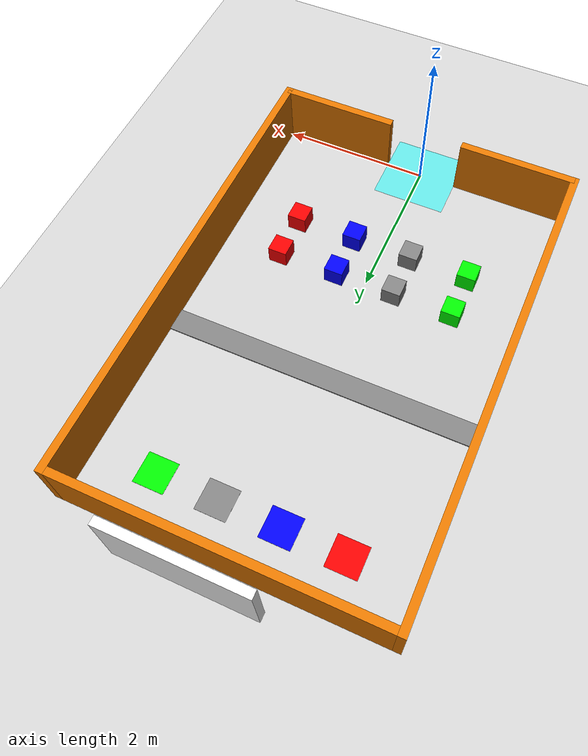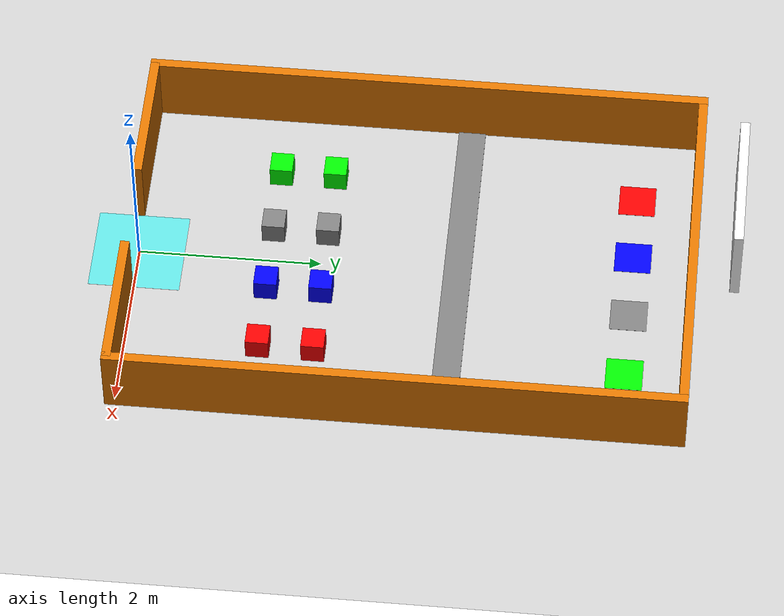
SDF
<?xml version="1.0" ?>
<sdf version="1.7">
  <world name="robocon_task_arena">
    <light type="directional" name="sun">
      <cast_shadows>true</cast_shadows>
      <pose>0 0 10 0 0 0</pose>
      <diffuse>0.8 0.8 0.8 1</diffuse>
      <specular>0.2 0.2 0.2 1</specular>
      <direction>-0.5 0.1 -0.9</direction>
    </light>

    <!-- 地面 -->
    <model name="ground_plane">
      <static>true</static>
      <link name="link">
        <collision name="collision">
          <geometry>
            <plane>
              <normal>0 0 1</normal>
              <size>100 100</size>
            </plane>
          </geometry>
        </collision>
        <visual name="visual">
          <geometry>
            <plane>
              <normal>0 0 1</normal>
              <size>100 100</size>
            </plane>
          </geometry>
          <material>
            <ambient>0.8 0.8 0.8 1</ambient>
            <diffuse>0.8 0.8 0.8 1</diffuse>
          </material>
        </visual>
      </link>
    </model>

    <!-- 围墙 - 整体上移3米，让启动区在原点 -->
    <model name="arena_walls">
      <static>true</static>
      <pose>0 0 0.4 0 0 0</pose>

      <!-- 后墙 (原 y=3.05 -> 现 y=6.05) -->
      <link name="wall_back">
        <pose>0 6.05 0 0 0 0</pose>
        <visual name="visual">
          <geometry><box><size>4.0 0.1 0.8</size></box></geometry>
          <material>
            <ambient>0.8745 0.4588 0 1</ambient>
            <diffuse>0.8745 0.4588 0 1</diffuse>
          </material>
        </visual>
        <collision name="collision">
          <geometry><box><size>4.0 0.1 0.8</size></box></geometry>
        </collision>
      </link>

      <!-- 前墙左段 (原 y=-3.05 -> 现 y=-0.05) -->
      <link name="wall_front_left">
        <pose>-1.275 -0.05 0 0 0 0</pose>
        <visual name="visual">
          <geometry><box><size>1.55 0.1 0.8</size></box></geometry>
          <material>
            <ambient>0.8745 0.4588 0 1</ambient>
            <diffuse>0.8745 0.4588 0 1</diffuse>
          </material>
        </visual>
        <collision name="collision">
          <geometry><box><size>1.55 0.1 0.8</size></box></geometry>
        </collision>
      </link>

      <!-- 前墙右段 (原 y=-3.05 -> 现 y=-0.05) -->
      <link name="wall_front_right">
        <pose>1.275 -0.05 0 0 0 0</pose>
        <visual name="visual">
          <geometry><box><size>1.55 0.1 0.8</size></box></geometry>
          <material>
            <ambient>0.8745 0.4588 0 1</ambient>
            <diffuse>0.8745 0.4588 0 1</diffuse>
          </material>
        </visual>
        <collision name="collision">
          <geometry><box><size>1.55 0.1 0.8</size></box></geometry>
        </collision>
      </link>

      <!-- 左墙 (原中心 y=0 -> 现中心 y=3.0，长度6.2米覆盖 -0.1 到 6.1) -->
      <link name="wall_left">
        <pose>-2.05 3.0 0 0 0 0</pose>
        <visual name="visual">
          <geometry><box><size>0.1 6.2 0.8</size></box></geometry>
          <material>
            <ambient>0.8745 0.4588 0 1</ambient>
            <diffuse>0.8745 0.4588 0 1</diffuse>
          </material>
        </visual>
        <collision name="collision">
          <geometry><box><size>0.1 6.2 0.8</size></box></geometry>
        </collision>
      </link>

      <!-- 右墙 (原中心 y=0 -> 现中心 y=3.0，长度6.2米覆盖 -0.1 到 6.1) -->
      <link name="wall_right">
        <pose>2.05 3.0 0 0 0 0</pose>
        <visual name="visual">
          <geometry><box><size>0.1 6.2 0.8</size></box></geometry>
          <material>
            <ambient>0.8745 0.4588 0 1</ambient>
            <diffuse>0.8745 0.4588 0 1</diffuse>
          </material>
        </visual>
        <collision name="collision">
          <geometry><box><size>0.1 6.2 0.8</size></box></geometry>
        </collision>
      </link>
    </model>

    <!-- 减速带 (原 y=0.5 -> 现 y=3.5) -->
    <model name="speed_bump">
      <static>true</static>
      <pose>0 3.5 0.01 0 0 0</pose>
      <link name="link">
        <visual name="visual">
          <geometry><box><size>4.0 0.3 0.02</size></box></geometry>
          <material>
            <ambient>0.5 0.5 0.5 1</ambient>
            <diffuse>0.5 0.5 0.5 1</diffuse>
          </material>
        </visual>
        <collision name="collision">
          <geometry><box><size>4.0 0.3 0.02</size></box></geometry>
        </collision>
      </link>
    </model>

    <!-- 归位区 (原 y=2.4 -> 现 y=5.4) -->
    <model name="return_zone_green_food">
      <static>true</static>
      <pose>1.2 5.4 0.001 0 0 0</pose>
      <link name="link">
        <visual name="visual">
          <geometry><box><size>0.4 0.4 0.002</size></box></geometry>
          <material>
            <ambient>0.0 1.0 0.0 1</ambient>
            <diffuse>0.0 1.0 0.0 1</diffuse>
          </material>
        </visual>
        <collision name="collision">
          <geometry><box><size>0.4 0.4 0.002</size></box></geometry>
        </collision>
      </link>
    </model>

    <model name="return_zone_gray_tools">
      <static>true</static>
      <pose>0.4 5.4 0.001 0 0 0</pose>
      <link name="link">
        <visual name="visual">
          <geometry><box><size>0.4 0.4 0.002</size></box></geometry>
          <material>
            <ambient>0.5 0.5 0.5 1</ambient>
            <diffuse>0.5 0.5 0.5 1</diffuse>
          </material>
        </visual>
        <collision name="collision">
          <geometry><box><size>0.4 0.4 0.002</size></box></geometry>
        </collision>
      </link>
    </model>

    <model name="return_zone_blue_instrument">
      <static>true</static>
      <pose>-0.4 5.4 0.00001 0 0 0</pose>
      <link name="link">
        <visual name="visual">
          <geometry><box><size>0.4 0.4 0.002</size></box></geometry>
          <material>
            <ambient>0.0 0.0 1.0 1</ambient>
            <diffuse>0.0 0.0 1.0 1</diffuse>
          </material>
        </visual>
        <collision name="collision">
          <geometry><box><size>0.4 0.4 0.002</size></box></geometry>
        </collision>
      </link>
    </model>

    <model name="return_zone_red_medicine">
      <static>true</static>
      <pose>-1.2 5.4 0.001 0 0 0</pose>
      <link name="link">
        <visual name="visual">
          <geometry><box><size>0.4 0.4 0.002</size></box></geometry>
          <material>
            <ambient>1.0 0.0 0.0 1</ambient>
            <diffuse>1.0 0.0 0.0 1</diffuse>
          </material>
        </visual>
        <collision name="collision">
          <geometry><box><size>0.4 0.4 0.002</size></box></geometry>
        </collision>
      </link>
    </model>

    <!-- 启动区 - 现在在原点 (原 y=-3.0 -> 现 y=0) -->
    <model name="start_zone">
      <static>true</static>
      <pose>0 0 0.001 0 0 0</pose>
      <link name="link">
        <visual name="visual">
          <geometry><box><size>1.0 1.0 0.002</size></box></geometry>
          <material>
            <ambient>0.0 1.0 1.0 0.5</ambient>
            <diffuse>0.0 1.0 1.0 0.5</diffuse>
          </material>
        </visual>
        <collision name="collision">
          <geometry><box><size>1.0 1.0 0.002</size></box></geometry>
        </collision>
      </link>
    </model>

    <!-- 物资箱存放区标记 -->
    <model name="supply_zones_markers">
      <static>true</static>
      <!-- 第一排 (原 y=-0.95 -> 现 y=2.05) -->
      <link name="supply_1_1">
        <pose>-1.2 2.05 0.0005 0 0 0</pose>
        <visual name="visual">
          <geometry><box><size>0.25 0.25 0.001</size></box></geometry>
          <material>
            <ambient>0.8 0.8 0.8 1</ambient>
            <diffuse>0.8 0.8 0.8 1</diffuse>
          </material>
        </visual>
      </link>
      <link name="supply_1_2">
        <pose>-0.4 2.05 0.0005 0 0 0</pose>
        <visual name="visual">
          <geometry><box><size>0.25 0.25 0.001</size></box></geometry>
          <material>
            <ambient>0.8 0.8 0.8 1</ambient>
            <diffuse>0.8 0.8 0.8 1</diffuse>
          </material>
        </visual>
      </link>
      <link name="supply_1_3">
        <pose>0.4 2.05 0.0005 0 0 0</pose>
        <visual name="visual">
          <geometry><box><size>0.25 0.25 0.001</size></box></geometry>
          <material>
            <ambient>0.8 0.8 0.8 1</ambient>
            <diffuse>0.8 0.8 0.8 1</diffuse>
          </material>
        </visual>
      </link>
      <link name="supply_1_4">
        <pose>1.2 2.05 0.0005 0 0 0</pose>
        <visual name="visual">
          <geometry><box><size>0.25 0.25 0.001</size></box></geometry>
          <material>
            <ambient>0.8 0.8 0.8 1</ambient>
            <diffuse>0.8 0.8 0.8 1</diffuse>
          </material>
        </visual>
      </link>
      <!-- 第二排 (原 y=-1.55 -> 现 y=1.45) -->
      <link name="supply_2_1">
        <pose>-1.2 1.45 0.0005 0 0 0</pose>
        <visual name="visual">
          <geometry><box><size>0.25 0.25 0.001</size></box></geometry>
          <material>
            <ambient>0.8 0.8 0.8 1</ambient>
            <diffuse>0.8 0.8 0.8 1</diffuse>
          </material>
        </visual>
      </link>
      <link name="supply_2_2">
        <pose>-0.4 1.45 0.0005 0 0 0</pose>
        <visual name="visual">
          <geometry><box><size>0.25 0.25 0.001</size></box></geometry>
          <material>
            <ambient>0.8 0.8 0.8 1</ambient>
            <diffuse>0.8 0.8 0.8 1</diffuse>
          </material>
        </visual>
      </link>
      <link name="supply_2_3">
        <pose>0.4 1.45 0.0005 0 0 0</pose>
        <visual name="visual">
          <geometry><box><size>0.25 0.25 0.001</size></box></geometry>
          <material>
            <ambient>0.8 0.8 0.8 1</ambient>
            <diffuse>0.8 0.8 0.8 1</diffuse>
          </material>
        </visual>
      </link>
      <link name="supply_2_4">
        <pose>1.2 1.45 0.0005 0 0 0</pose>
        <visual name="visual">
          <geometry><box><size>0.25 0.25 0.001</size></box></geometry>
          <material>
            <ambient>0.8 0.8 0.8 1</ambient>
            <diffuse>0.8 0.8 0.8 1</diffuse>
          </material>
        </visual>
      </link>
    </model>

    <!-- 物资箱 -->
    <!-- 第一排 (原 y=-0.95 -> 现 y=2.05) -->
    <model name="food_box_1">
      <static>false</static>
      <pose>-1.2 2.05 0.125 0 0 0</pose>
      <link name="link">
        <inertial>
          <mass>0.5</mass>
          <inertia>
            <ixx>0.0052</ixx> <iyy>0.0052</iyy> <izz>0.0052</izz>
            <ixy>0</ixy> <ixz>0</ixz> <iyz>0</iyz>
          </inertia>
        </inertial>
        <collision name="collision">
          <geometry><box><size>0.25 0.25 0.25</size></box></geometry>
        </collision>
        <visual name="visual">
          <geometry><box><size>0.25 0.25 0.25</size></box></geometry>
          <material>
            <ambient>0.0 1.0 0.0 1</ambient>
            <diffuse>0.0 1.0 0.0 1</diffuse>
          </material>
        </visual>
      </link>
    </model>

    <model name="tool_box_1">
      <static>false</static>
      <pose>-0.4 2.05 0.125 0 0 0</pose>
      <link name="link">
        <inertial>
          <mass>0.5</mass>
          <inertia>
            <ixx>0.0052</ixx> <iyy>0.0052</iyy> <izz>0.0052</izz>
            <ixy>0</ixy> <ixz>0</ixz> <iyz>0</iyz>
          </inertia>
        </inertial>
        <collision name="collision">
          <geometry><box><size>0.25 0.25 0.25</size></box></geometry>
        </collision>
        <visual name="visual">
          <geometry><box><size>0.25 0.25 0.25</size></box></geometry>
          <material>
            <ambient>0.5 0.5 0.5 1</ambient>
            <diffuse>0.5 0.5 0.5 1</diffuse>
          </material>
        </visual>
      </link>
    </model>

    <model name="instrument_box_1">
      <static>false</static>
      <pose>0.4 2.05 0.125 0 0 0</pose>
      <link name="link">
        <inertial>
          <mass>0.5</mass>
          <inertia>
            <ixx>0.0052</ixx> <iyy>0.0052</iyy> <izz>0.0052</izz>
            <ixy>0</ixy> <ixz>0</ixz> <iyz>0</iyz>
          </inertia>
        </inertial>
        <collision name="collision">
          <geometry><box><size>0.25 0.25 0.25</size></box></geometry>
        </collision>
        <visual name="visual">
          <geometry><box><size>0.25 0.25 0.25</size></box></geometry>
          <material>
            <ambient>0.0 0.0 1.0 1</ambient>
            <diffuse>0.0 0.0 1.0 1</diffuse>
          </material>
        </visual>
      </link>
    </model>

    <model name="medicine_box_1">
      <static>false</static>
      <pose>1.2 2.05 0.125 0 0 0</pose>
      <link name="link">
        <inertial>
          <mass>0.5</mass>
          <inertia>
            <ixx>0.0052</ixx> <iyy>0.0052</iyy> <izz>0.0052</izz>
            <ixy>0</ixy> <ixz>0</ixz> <iyz>0</iyz>
          </inertia>
        </inertial>
        <collision name="collision">
          <geometry><box><size>0.25 0.25 0.25</size></box></geometry>
        </collision>
        <visual name="visual">
          <geometry><box><size>0.25 0.25 0.25</size></box></geometry>
          <material>
            <ambient>1.0 0.0 0.0 1</ambient>
            <diffuse>1.0 0.0 0.0 1</diffuse>
          </material>
        </visual>
      </link>
    </model>

    <!-- 第二排 (原 y=-1.55 -> 现 y=1.45) -->
    <model name="food_box_2">
      <static>false</static>
      <pose>-1.2 1.45 0.125 0 0 0</pose>
      <link name="link">
        <inertial>
          <mass>0.5</mass>
          <inertia>
            <ixx>0.0052</ixx> <iyy>0.0052</iyy> <izz>0.0052</izz>
            <ixy>0</ixy> <ixz>0</ixz> <iyz>0</iyz>
          </inertia>
        </inertial>
        <collision name="collision">
          <geometry><box><size>0.25 0.25 0.25</size></box></geometry>
        </collision>
        <visual name="visual">
          <geometry><box><size>0.25 0.25 0.25</size></box></geometry>
          <material>
            <ambient>0.0 1.0 0.0 1</ambient>
            <diffuse>0.0 1.0 0.0 1</diffuse>
          </material>
        </visual>
      </link>
    </model>

    <model name="tool_box_2">
      <static>false</static>
      <pose>-0.4 1.45 0.125 0 0 0</pose>
      <link name="link">
        <inertial>
          <mass>0.5</mass>
          <inertia>
            <ixx>0.0052</ixx> <iyy>0.0052</iyy> <izz>0.0052</izz>
            <ixy>0</ixy> <ixz>0</ixz> <iyz>0</iyz>
          </inertia>
        </inertial>
        <collision name="collision">
          <geometry><box><size>0.25 0.25 0.25</size></box></geometry>
        </collision>
        <visual name="visual">
          <geometry><box><size>0.25 0.25 0.25</size></box></geometry>
          <material>
            <ambient>0.5 0.5 0.5 1</ambient>
            <diffuse>0.5 0.5 0.5 1</diffuse>
          </material>
        </visual>
      </link>
    </model>

    <model name="instrument_box_2">
      <static>false</static>
      <pose>0.4 1.45 0.125 0 0 0</pose>
      <link name="link">
        <inertial>
          <mass>0.5</mass>
          <inertia>
            <ixx>0.0052</ixx> <iyy>0.0052</iyy> <izz>0.0052</izz>
            <ixy>0</ixy> <ixz>0</ixz> <iyz>0</iyz>
          </inertia>
        </inertial>
        <collision name="collision">
          <geometry><box><size>0.25 0.25 0.25</size></box></geometry>
        </collision>
        <visual name="visual">
          <geometry><box><size>0.25 0.25 0.25</size></box></geometry>
          <material>
            <ambient>0.0 0.0 1.0 1</ambient>
            <diffuse>0.0 0.0 1.0 1</diffuse>
          </material>
        </visual>
      </link>
    </model>

    <model name="medicine_box_2">
      <static>false</static>
      <pose>1.2 1.45 0.125 0 0 0</pose>
      <link name="link">
        <inertial>
          <mass>0.5</mass>
          <inertia>
            <ixx>0.0052</ixx> <iyy>0.0052</iyy> <izz>0.0052</izz>
            <ixy>0</ixy> <ixz>0</ixz> <iyz>0</iyz>
          </inertia>
        </inertial>
        <collision name="collision">
          <geometry><box><size>0.25 0.25 0.25</size></box></geometry>
        </collision>
        <visual name="visual">
          <geometry><box><size>0.25 0.25 0.25</size></box></geometry>
          <material>
            <ambient>1.0 0.0 0.0 1</ambient>
            <diffuse>1.0 0.0 0.0 1</diffuse>
          </material>
        </visual>
      </link>
    </model>

    <!-- 智力题目显示区 (原 y=3.5 -> 现 y=6.5) -->
    <model name="display_area">
      <static>true</static>
      <pose>0 6.5 1.5 0 0 0</pose>
      <link name="link">
        <visual name="visual">
          <geometry><box><size>1.6 0.1 0.9</size></box></geometry>
          <material>
            <ambient>1.0 1.0 1.0 1</ambient>
            <diffuse>1.0 1.0 1.0 1</diffuse>
          </material>
        </visual>
      </link>
    </model>

  </world>
</sdf>
